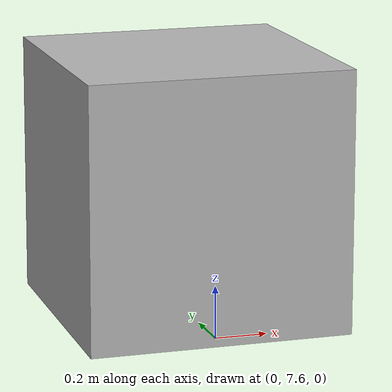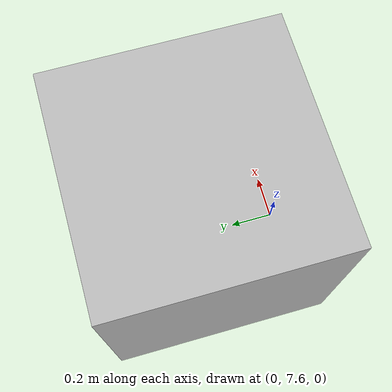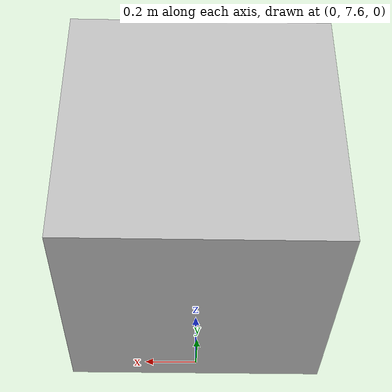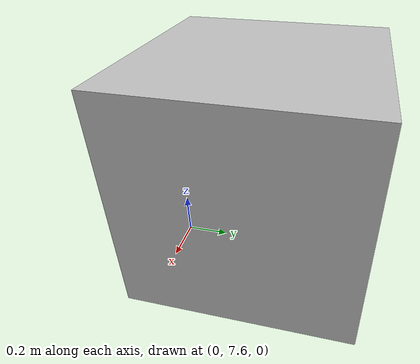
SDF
<?xml version='1.0' encoding='utf-8'?>
<sdf version="1.9">
  <model name="dronedream_obstacle_000">
    <static>true</static>
    <pose>0 8 0.5 0 0 0</pose>
    <link name="body">
      <collision name="collision">
        <geometry>
          <box>
            <size>1 1 1</size>
          </box>
        </geometry>
      </collision>
      <visual name="visual">
        <geometry>
          <box>
            <size>1 1 1</size>
          </box>
        </geometry>
      </visual>
    </link>
  </model>
</sdf>
